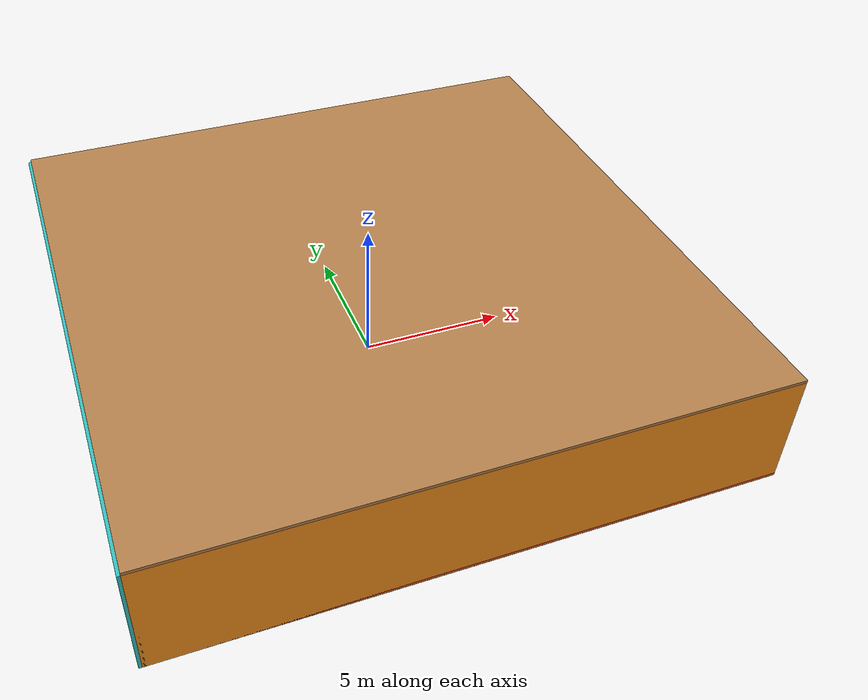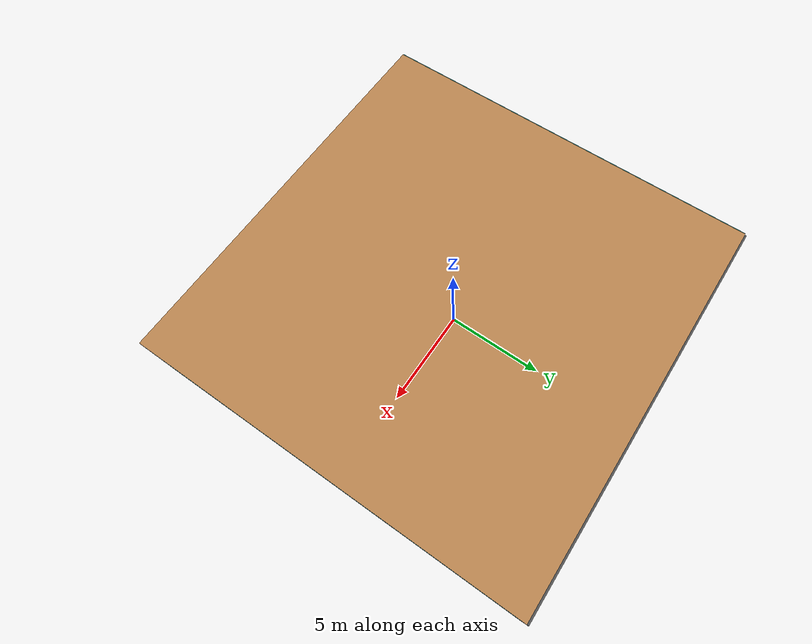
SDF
<sdf version="1.4">
 <world name="default">
  <physics type="ode">
   <max_step_size>0.001</max_step_size>
   <real_time_factor>1</real_time_factor>
   <real_time_update_rate>1000</real_time_update_rate>
   <gravity>0 0 -9.8</gravity>
  </physics>
  <scene><ambient>0.4 0.4 0.4 1</ambient><background>0.7 0.7 0.7 1</background><shadows>1</shadows></scene>
  <model name="Surrounding">
   <static>1</static>
   <link name="Ceiling">
    <collision name="Ceiling_Collision"><geometry><box><size>20 20 0.1</size></box></geometry></collision>
    <visual name="Ceiling_Visual">
     <geometry><box><size>20 20 0.1</size></box></geometry>
     <material>
      <script><uri>file://media/materials/scripts/gazebo.material</uri><name>Gazebo/WoodPallet</name></script>
     </material>
    </visual>
    <pose>0 0 4.05 0 0 0</pose>
   </link>
   <link name="Wall_South">
    <collision name="Wall_South_Collision">
     <geometry><box><size>20 0 4</size></box></geometry>
     <pose>0 0 2 0 -0 0</pose>
    </collision>
    <visual name="Wall_South_Visual">
     <pose>0 0 2 0 -0 0</pose>
     <geometry><box><size>20 0 4</size></box></geometry>
     <material>
      <script><uri>file://media/materials/scripts/gazebo.material</uri><name>Gazebo/Orange</name></script>
     </material>
    </visual>
    <velocity_decay><linear>0</linear><angular>0</angular></velocity_decay>
    <pose>0 -10 0 0 -0 0</pose>
   </link>
   <link name="Wall_East">
    <collision name="Wall_21_Collision">
     <geometry><box><size>20 0 4</size></box></geometry>
     <pose>0 0 2 0 -0 0</pose>
    </collision>
    <visual name="Wall_21_Visual">
     <pose>0 0 2 0 -0 0</pose>
     <geometry><box><size>20 0 4</size></box></geometry>
     <material>
      <script><uri>file://media/materials/scripts/gazebo.material</uri><name>Gazebo/TurquoiseGlow</name></script>
     </material>
    </visual>
    <velocity_decay><linear>0</linear><angular>0</angular></velocity_decay>
    <pose>10 0 0 0 -0 1.5708</pose>
   </link>
   <link name="Wall_North">
    <collision name="Wall_22_Collision">
     <geometry><box><size>20 0.2 4</size></box></geometry>
     <pose>0 0 2 0 -0 0</pose>
    </collision>
    <visual name="Wall_22_Visual">
     <pose>0 0 2 0 -0 0</pose>
     <geometry><box><size>20 0.2 4</size></box></geometry>
     <material>
      <script><uri>file://media/materials/scripts/gazebo.material</uri><name>Gazebo/DarkGrey</name></script>
     </material>
    </visual>
    <velocity_decay><linear>0</linear><angular>0</angular></velocity_decay>
    <pose>0 10 0 0 -0 0</pose>
   </link>
   <link name="Wall_West">
    <collision name="Wall_23_Collision">
     <geometry><box><size>20 0.2 4</size></box></geometry>
     <pose>0 0 2 0 -0 0</pose>
    </collision>
    <visual name="Wall_23_Visual">
     <pose>0 0 2 0 -0 0</pose>
     <geometry><box><size>20 0.2 4</size></box></geometry>
     <material>
      <script>
       <uri>file://media/materials/scripts/gazebo.material</uri>
       <name>Gazebo/TurquoiseGlowOutline</name>
      </script>
     </material>
    </visual>
    <velocity_decay><linear>0</linear><angular>0</angular></velocity_decay>
    <pose>-10 0 0 0 0 -1.5708</pose>
   </link>
   <link name="Ground_link">
    <collision name="collision">
     <pose>0 0 .05 0 -0 0</pose>
     <geometry><box><size>20 20 0.1</size></box></geometry>
    </collision>
    <visual name="visual">
     <pose>0 0 .05 0 -0 0</pose>
     <geometry><box><size>20 20 0.1</size></box></geometry>
     <material>
      <script><uri>file://media/materials/scripts/gazebo.material</uri><name>Gazebo/RedTransparent</name></script>
     </material>
    </visual>
   </link>
   <static>1</static>
  </model>
  <spherical_coordinates>
   <surface_model>EARTH_WGS84</surface_model>
   <latitude_deg>0</latitude_deg>
   <longitude_deg>0</longitude_deg>
   <elevation>0</elevation>
   <heading_deg>0</heading_deg>
  </spherical_coordinates>
  <light name="lightball_0" type="diffuse">
   <diffuse>0.8 0.8 0.8 1</diffuse>
   <specular>0.2 0.2 0.2 1</specular>
   <attenuation>
    <range>100</range>
    <constant>0.7</constant>
    <linear>0.01</linear>
    <quadratic>0.001</quadratic>
   </attenuation>
   <direction>-0.5 0.1 -0.9</direction>
   <pose>-7.2835731822 -5.20698409661 1.50787311705 0 0 0</pose>
  </light>
  <light name="lightball_1" type="diffuse">
   <diffuse>0.8 0.8 0.8 1</diffuse>
   <specular>0.2 0.2 0.2 1</specular>
   <attenuation>
    <range>100</range>
    <constant>0.7</constant>
    <linear>0.01</linear>
    <quadratic>0.001</quadratic>
   </attenuation>
   <direction>-0.5 0.1 -0.9</direction>
   <pose>5.97679551406 -7.04180564254 3.07444297808 0 0 0</pose>
  </light>
  <light name="lightball_2" type="diffuse">
   <diffuse>0.8 0.8 0.8 1</diffuse>
   <specular>0.2 0.2 0.2 1</specular>
   <attenuation>
    <range>100</range>
    <constant>0.7</constant>
    <linear>0.01</linear>
    <quadratic>0.001</quadratic>
   </attenuation>
   <direction>-0.5 0.1 -0.9</direction>
   <pose>2.45969284006 -9.07961442211 3.78839891135 0 0 0</pose>
  </light>
  <light name="lightball_3" type="diffuse">
   <diffuse>0.8 0.8 0.8 1</diffuse>
   <specular>0.2 0.2 0.2 1</specular>
   <attenuation>
    <range>100</range>
    <constant>0.7</constant>
    <linear>0.01</linear>
    <quadratic>0.001</quadratic>
   </attenuation>
   <direction>-0.5 0.1 -0.9</direction>
   <pose>-6.09641824094 -2.66765257579 1.59022636835 0 0 0</pose>
  </light>
  <light name="lightball_4" type="diffuse">
   <diffuse>0.8 0.8 0.8 1</diffuse>
   <specular>0.2 0.2 0.2 1</specular>
   <attenuation>
    <range>100</range>
    <constant>0.7</constant>
    <linear>0.01</linear>
    <quadratic>0.001</quadratic>
   </attenuation>
   <direction>-0.5 0.1 -0.9</direction>
   <pose>2.31928930524 -0.637589160534 2.82644252769 0 0 0</pose>
  </light>
  <light name="lightball_5" type="diffuse">
   <diffuse>0.8 0.8 0.8 1</diffuse>
   <specular>0.2 0.2 0.2 1</specular>
   <attenuation>
    <range>100</range>
    <constant>0.7</constant>
    <linear>0.01</linear>
    <quadratic>0.001</quadratic>
   </attenuation>
   <direction>-0.5 0.1 -0.9</direction>
   <pose>-1.56420472254 -3.22357856972 3.0954020462 0 0 0</pose>
  </light>
  <light name="lightball_6" type="diffuse">
   <diffuse>0.8 0.8 0.8 1</diffuse>
   <specular>0.2 0.2 0.2 1</specular>
   <attenuation>
    <range>100</range>
    <constant>0.7</constant>
    <linear>0.01</linear>
    <quadratic>0.001</quadratic>
   </attenuation>
   <direction>-0.5 0.1 -0.9</direction>
   <pose>-1.38913004191 -2.09562943339 2.44205850631 0 0 0</pose>
  </light>
  <light name="lightball_7" type="diffuse">
   <diffuse>0.8 0.8 0.8 1</diffuse>
   <specular>0.2 0.2 0.2 1</specular>
   <attenuation>
    <range>100</range>
    <constant>0.7</constant>
    <linear>0.01</linear>
    <quadratic>0.001</quadratic>
   </attenuation>
   <direction>-0.5 0.1 -0.9</direction>
   <pose>-6.30876246827 -7.82671995764 3.23936181837 0 0 0</pose>
  </light>
  <include>
   <uri>model://construction_cone</uri>
   <pose>-6.70990207671 0.809760180994 0 0 0 1.3589350837</pose>
  </include>
  <include>
   <uri>model://construction_cone</uri>
   <pose>-6.46279792236 7.06116707294 0 0 0 0.464221576803</pose>
  </include>
  <include>
   <uri>model://construction_cone</uri>
   <pose>-1.1376852802 -4.02453853771 0 0 0 1.95360330311</pose>
  </include>
  <include>
   <uri>model://robocup_3Dsim_goal</uri>
   <pose>-0.724344544962 1.5423225604 0 0 0 0.934141353817</pose>
  </include>
  <include><uri>model://cabinet</uri><pose>-2.30516315806 4.12609218208 0 0 0 2.62535526579</pose></include>
  <include><uri>model://cabinet</uri><pose>3.42268687035 5.63416036419 0 0 0 1.70592141899</pose></include>
  <include><uri>model://table</uri><pose>6.32782480659 -4.982562622 0 0 0 2.94828610569</pose></include>
  <include><uri>model://table</uri><pose>6.92297368432 2.26699389171 0 0 0 0.912555150319</pose></include>
 </world>
</sdf>

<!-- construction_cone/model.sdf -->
<sdf version="1.5">
  <model name="Construction Cone">
    <link name="link">
      <collision name="collision">
        <geometry>
          <mesh>
            <scale>10 10 10</scale>
            <uri>file://isr-testbed/construction_cone/meshes/construction_cone.dae</uri>
          </mesh>
        </geometry>
      </collision>
      <visual name="visual">
        <geometry>
          <mesh>
            <scale>10 10 10</scale>
            <uri>file://isr-testbed/construction_cone/meshes/construction_cone.dae</uri>
          </mesh>
        </geometry>
      </visual>
    </link>
  </model>
</sdf>

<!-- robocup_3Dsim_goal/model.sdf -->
<sdf version="1.5">
  <model name="robocup_3d_goal">
    <static>true</static>
    <link name="left_post">
      <pose>0 1.05 0.45 0 0 0</pose>
      <collision name="collision">
        <geometry>
          <cylinder>
            <radius>0.05</radius>
            <length>0.9</length>
          </cylinder>
        </geometry>
      </collision>
      <visual name="visual">
        <geometry>
          <cylinder>
            <radius>0.05</radius>
            <length>0.9</length>
          </cylinder>
        </geometry>
        <material>
          <script>
            <uri>file://media/materials/scripts/gazebo.material</uri>
            <name>Gazebo/ZincYellow</name>
          </script>
        </material>
      </visual>
    </link>
    <link name="left_support_horiz_lower">
      <pose>0.30 1.05 0.01 0 0 0</pose>
      <collision name="collision">
        <geometry>
          <box>
            <size>0.50 0.02 0.02</size>
          </box>
        </geometry>
      </collision>
      <visual name="visual">
        <geometry>
          <box>
            <size>0.50 0.02 0.02</size>
          </box>
        </geometry>
        <material>
          <script>
            <uri>file://media/materials/scripts/gazebo.material</uri>
            <name>Gazebo/White</name>
          </script>
        </material>
      </visual>
    </link>
    <link name="left_support_horiz_upper">
      <pose>0.30 1.05 0.79 0 0 0</pose>
      <collision name="collision">
        <geometry>
          <box>
            <size>0.50 0.02 0.02</size>
          </box>
        </geometry>
      </collision>
      <visual name="visual">
        <geometry>
          <box>
            <size>0.50 0.02 0.02</size>
          </box>
        </geometry>
        <material>
          <script>
            <uri>file://media/materials/scripts/gazebo.material</uri>
            <name>Gazebo/White</name>
          </script>
        </material>
      </visual>
    </link>
    <link name="left_support_vertical">
      <pose>0.56 1.05 0.4 0 1.5708 0</pose>
      <collision name="collision">
        <geometry>
          <box>
            <size>0.80 0.02 0.02</size>
          </box>
        </geometry>
      </collision>
      <visual name="visual">
        <geometry>
          <box>
            <size>0.80 0.02 0.02</size>
          </box>
        </geometry>
        <material>
          <script>
            <uri>file://media/materials/scripts/gazebo.material</uri>
            <name>Gazebo/White</name>
          </script>
        </material>
      </visual>
    </link>
    <link name="right_support_horiz_lower">
      <pose>0.30 -1.05 0.01 0 0 0</pose>
      <collision name="collision">
        <geometry>
          <box>
            <size>0.50 0.02 0.02</size>
          </box>
        </geometry>
      </collision>
      <visual name="visual">
        <geometry>
          <box>
            <size>0.50 0.02 0.02</size>
          </box>
        </geometry>
        <material>
          <script>
            <uri>file://media/materials/scripts/gazebo.material</uri>
            <name>Gazebo/White</name>
          </script>
        </material>
      </visual>
    </link>
    <link name="right_support_horiz_upper">
      <pose>0.30 -1.05 0.79 0 0 0</pose>
      <collision name="collision">
        <geometry>
          <box>
            <size>0.50 0.02 0.02</size>
          </box>
        </geometry>
      </collision>
      <visual name="visual">
        <geometry>
          <box>
            <size>0.50 0.02 0.02</size>
          </box>
        </geometry>
        <material>
          <script>
            <uri>file://media/materials/scripts/gazebo.material</uri>
            <name>Gazebo/White</name>
          </script>
        </material>
      </visual>
    </link>
    <link name="right_support_vertical">
      <pose>0.56 -1.05 0.4 0 1.5708 0</pose>
      <collision name="collision">
        <geometry>
          <box>
            <size>0.80 0.02 0.02</size>
          </box>
        </geometry>
      </collision>
      <visual name="visual">
        <geometry>
          <box>
            <size>0.80 0.02 0.02</size>
          </box>
        </geometry>
        <material>
          <script>
            <uri>file://media/materials/scripts/gazebo.material</uri>
            <name>Gazebo/White</name>
          </script>
        </material>
      </visual>
    </link>
    <link name="center_support_horiz_lower">
      <pose>0.56 0 0.01 0 1.5708 0</pose>
      <collision name="collision">
        <geometry>
          <box>
            <size>0.02 2.08 0.02</size>
          </box>
        </geometry>
      </collision>
      <visual name="visual">
        <geometry>
          <box>
            <size>0.02 2.08 0.02</size>
          </box>
        </geometry>
        <material>
          <script>
            <uri>file://media/materials/scripts/gazebo.material</uri>
            <name>Gazebo/White</name>
          </script>
        </material>
      </visual>
    </link>
    <link name="center_support_horiz_upper">
      <pose>0.56 0 0.79 0 1.5708 0</pose>
      <collision name="collision">
        <geometry>
          <box>
            <size>0.02 2.08 0.02</size>
          </box>
        </geometry>
      </collision>
      <visual name="visual">
        <geometry>
          <box>
            <size>0.02 2.08 0.02</size>
          </box>
        </geometry>
        <material>
          <script>
            <uri>file://media/materials/scripts/gazebo.material</uri>
            <name>Gazebo/White</name>
          </script>
        </material>
      </visual>
    </link>
    <link name="right_post">
      <pose>0 -1.05 0.45 0 0 0</pose>
      <collision name="collision">
        <geometry>
          <cylinder>
            <radius>0.05</radius>
            <length>0.9</length>
          </cylinder>
        </geometry>
      </collision>
      <visual name="visual">
        <geometry>
          <cylinder>
            <radius>0.05</radius>
            <length>0.9</length>
          </cylinder>
        </geometry>
        <material>
          <script>
            <uri>file://media/materials/scripts/gazebo.material</uri>
            <name>Gazebo/ZincYellow</name>
          </script>
        </material>
      </visual>
    </link>
    <link name="crossbar">
      <pose>0 0 0.85 1.57 1.57 0</pose>
      <collision name="collision">
        <geometry>
          <cylinder>
            <radius>0.05</radius>
            <length>2.0</length>
          </cylinder>
        </geometry>
      </collision>
      <visual name="visual">
        <geometry>
          <cylinder>
            <radius>0.05</radius>
            <length>2.0</length>
          </cylinder>
        </geometry>
        <material>
          <script>
            <uri>file://media/materials/scripts/gazebo.material</uri>
            <name>Gazebo/ZincYellow</name>
          </script>
        </material>
      </visual>
    </link>
    <link name="center_net">
      <pose>0.56 0 0.40 0 0 0</pose>
      <collision name="collision">
        <geometry>
          <box>
            <size>0.01 2.1 0.80</size>
          </box>
        </geometry>
      </collision>
      <visual name="visual">
        <geometry>
          <box>
            <size>0.01 2.1 0.80</size>
          </box>
        </geometry>
        <material>
          <script>
            <uri>model://../model_source/models/robocup09_spl_field/materials/scripts/</uri>
            <uri>model://../model_source/models/robocup09_spl_field/materials/textures/</uri>
            <name>RoboCup/Net</name>
          </script>
        </material>
      </visual>
    </link>
    <link name="left_net">
      <pose>0.30 1.05 0.40 0 0 0</pose>
      <collision name="collision">
        <geometry>
          <box>
            <size>0.50 0.01 0.76</size>
          </box>
        </geometry>
      </collision>
      <visual name="visual">
        <geometry>
          <box>
            <size>0.50 0.01 0.76</size>
          </box>
        </geometry>
        <material>
          <script>
            <uri>model://../model_source/models/robocup09_spl_field/materials/scripts/</uri>
            <uri>model://../model_source/models/robocup09_spl_field/materials/textures/</uri>
            <name>RoboCup/Net</name>
          </script>
        </material>
      </visual>
    </link>
    <link name="right_net">
      <pose>0.30 -1.05 0.40 0 0 0</pose>
      <collision name="collision">
        <geometry>
          <box>
            <size>0.50 0.01 0.76</size>
          </box>
        </geometry>
      </collision>
      <visual name="visual">
        <geometry>
          <box>
            <size>0.50 0.01 0.76</size>
          </box>
        </geometry>
        <material>
          <script>
            <uri>model://../model_source/models/robocup09_spl_field/materials/scripts/</uri>
            <uri>model://../model_source/models/robocup09_spl_field/materials/textures/</uri>
            <name>RoboCup/Net</name>
          </script>
        </material>
      </visual>
    </link>
  </model>
</sdf>

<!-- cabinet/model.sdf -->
<sdf version="1.5">
  <model name="cabinet">
    <static>true</static>
    <link name="cabinet_bottom_plate">
      <inertial>
        <pose>0 0 -1 0 0 0</pose>
        <inertia>
          <ixx>2.050000</ixx>
          <ixy>0</ixy>
          <ixz>0</ixz>
          <iyy>2.050000</iyy>
          <iyz>0</iyz>
          <izz>2.050000</izz>
        </inertia>
        <mass>25.000000</mass>
      </inertial>
      <collision name="cabinet_bottom_plate_geom">
        <pose>0 0 0.010000 0 0 0</pose>
        <geometry>
          <box>
            <size>0.450000 0.450000 0.020000</size>
          </box>
        </geometry>
      </collision>
      <visual name="cabinet_bottom_plate_geom_visual">
        <pose>0 0 0.010000 0 0 0</pose>
        <geometry>
          <box>
            <size>0.450000 0.450000 0.020000</size>
          </box>
        </geometry>
        <material>
          <script>
            <uri>model://media/materials/scripts/gazebo.material</uri>
            <name>Gazebo/Wood</name>
          </script>
        </material>
      </visual>
      <collision name="cabinet_bottom_plate_geom_cabinet_back_plate">
        <pose>0.235000 0 0.510000 0 0 0</pose>
        <geometry>
          <box>
            <size>0.020000 0.450000 1.020000</size>
          </box>
        </geometry>
      </collision>
      <visual name="cabinet_bottom_plate_geom_cabinet_back_plate_visual">
        <pose>0.235000 0 0.510000 0 0 0</pose>
        <geometry>
          <box>
            <size>0.020000 0.450000 1.020000</size>
          </box>
        </geometry>
        <material>
          <script>
            <uri>model://media/materials/scripts/gazebo.material</uri>
            <name>Gazebo/Wood</name>
          </script>
        </material>
      </visual>
      <collision name="cabinet_bottom_plate_geom_cabinet_left_plate">
        <pose>0 0.235000 0.510000 0 0 0</pose>
        <geometry>
          <box>
            <size>0.450000 0.020000 1.020000</size>
          </box>
        </geometry>
      </collision>
      <visual name="cabinet_bottom_plate_geom_cabinet_left_plate_visual">
        <pose>0 0.235000 0.510000 0 0 0</pose>
        <geometry>
          <box>
            <size>0.450000 0.020000 1.020000</size>
          </box>
        </geometry>
        <material>
          <script>
            <uri>model://media/materials/scripts/gazebo.material</uri>
            <name>Gazebo/Wood</name>
          </script>
        </material>
      </visual>
      <collision name="cabinet_bottom_plate_geom_cabinet_middle_plate">
        <pose>0 0 0.510000 0 0 0</pose>
        <geometry>
          <box>
            <size>0.450000 0.450000 0.020000</size>
          </box>
        </geometry>
      </collision>
      <visual name="cabinet_bottom_plate_geom_cabinet_middle_plate_visual">
        <pose>0 0 0.510000 0 0 0</pose>
        <geometry>
          <box>
            <size>0.450000 0.450000 0.020000</size>
          </box>
        </geometry>
        <material>
          <script>
            <uri>model://media/materials/scripts/gazebo.material</uri>
            <name>Gazebo/Wood</name>
          </script>
        </material>
      </visual>
      <collision name="cabinet_bottom_plate_geom_cabinet_right_plate">
        <pose>0 -0.235000 0.510000 0 0 0</pose>
        <geometry>
          <box>
            <size>0.450000 0.020000 1.020000</size>
          </box>
        </geometry>
      </collision>
      <visual name="cabinet_bottom_plate_geom_cabinet_right_plate_visual">
        <pose>0 -0.235000 0.510000 0 0 0</pose>
        <geometry>
          <box>
            <size>0.450000 0.020000 1.020000</size>
          </box>
        </geometry>
        <material>
          <script>
            <uri>model://media/materials/scripts/gazebo.material</uri>
            <name>Gazebo/Wood</name>
          </script>
        </material>
      </visual>
      <collision name="cabinet_bottom_plate_geom_cabinet_top_plate">
        <pose>0 0 1.010000 0 0 0</pose>
        <geometry>
          <box>
            <size>0.450000 0.450000 0.020000</size>
          </box>
        </geometry>
      </collision>
      <visual name="cabinet_bottom_plate_geom_cabinet_top_plate_visual">
        <pose>0 0 1.010000 0 0 0</pose>
        <geometry>
          <box>
            <size>0.450000 0.450000 0.020000</size>
          </box>
        </geometry>
        <material>
          <script>
            <uri>model://media/materials/scripts/gazebo.material</uri>
            <name>Gazebo/Wood</name>
          </script>
        </material>
      </visual>
    </link>
  </model>
</sdf>

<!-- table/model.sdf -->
<sdf version="1.5">
  <model name="table">
    <static>true</static>
    <link name="link">
      <collision name="surface">
        <pose>0 0 1.0 0 0 0</pose>
        <geometry>
          <box>
            <size>1.5 0.8 0.03</size>
          </box>
        </geometry>
        <surface>
          <friction>
            <ode>
              <mu>0.6</mu>
              <mu2>0.6</mu2>
            </ode>
          </friction>
        </surface>
      </collision>
      <visual name="visual1">
        <pose>0 0 1.0 0 0 0</pose>
        <geometry>
          <box>
            <size>1.5 0.8 0.03</size>
          </box>
        </geometry>
        <material>
          <script>
            <uri>model://media/materials/scripts/gazebo.material</uri>
            <name>Gazebo/Wood</name>
          </script>
        </material>
      </visual>
      <collision name="front_left_leg">
        <pose>0.68 0.38 0.5 0 0 0</pose>
        <geometry>
          <cylinder>
            <radius>0.02</radius>
            <length>1.0</length>
          </cylinder>
        </geometry>
      </collision>
      <visual name="front_left_leg">
        <pose>0.68 0.38 0.5 0 0 0</pose>
        <geometry>
          <cylinder>
            <radius>0.02</radius>
            <length>1.0</length>
          </cylinder>
        </geometry>
        <material>
          <script>
            <uri>model://media/materials/scripts/gazebo.material</uri>
            <name>Gazebo/Grey</name>
          </script>
        </material>
      </visual>
      <collision name="front_right_leg">
        <pose>0.68 -0.38 0.5 0 0 0</pose>
        <geometry>
          <cylinder>
            <radius>0.02</radius>
            <length>1.0</length>
          </cylinder>
        </geometry>
      </collision>
      <visual name="front_right_leg">
        <pose>0.68 -0.38 0.5 0 0 0</pose>
        <geometry>
          <cylinder>
            <radius>0.02</radius>
            <length>1.0</length>
          </cylinder>
        </geometry>
        <material>
          <script>
            <uri>model://media/materials/scripts/gazebo.material</uri>
            <name>Gazebo/Grey</name>
          </script>
        </material>
      </visual>
      <collision name="back_right_leg">
        <pose>-0.68 -0.38 0.5 0 0 0</pose>
        <geometry>
          <cylinder>
            <radius>0.02</radius>
            <length>1.0</length>
          </cylinder>
        </geometry>
      </collision>
      <visual name="back_right_leg">
        <pose>-0.68 -0.38 0.5 0 0 0</pose>
        <geometry>
          <cylinder>
            <radius>0.02</radius>
            <length>1.0</length>
          </cylinder>
        </geometry>
        <material>
          <script>
            <uri>model://media/materials/scripts/gazebo.material</uri>
            <name>Gazebo/Grey</name>
          </script>
        </material>
      </visual>
      <collision name="back_left_leg">
        <pose>-0.68 0.38 0.5 0 0 0</pose>
        <geometry>
          <cylinder>
            <radius>0.02</radius>
            <length>1.0</length>
          </cylinder>
        </geometry>
      </collision>
      <visual name="back_left_leg">
        <pose>-0.68 0.38 0.5 0 0 0</pose>
        <geometry>
          <cylinder>
            <radius>0.02</radius>
            <length>1.0</length>
          </cylinder>
        </geometry>
        <material>
          <script>
            <uri>model://media/materials/scripts/gazebo.material</uri>
            <name>Gazebo/Grey</name>
          </script>
        </material>
      </visual>
    </link>
  </model>
</sdf>
